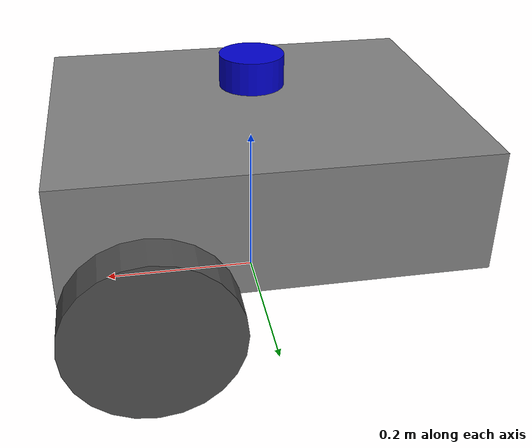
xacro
<?xml version="1.0"?>
<robot xmlns:xacro="http://www.ros.org/wiki/xacro" name="umma_robot">

  <xacro:arg name="wheel_radius"   default="0.1"/>
  <xacro:arg name="wheel_base"     default="0.5"/>
  <xacro:arg name="wheel_offset_x" default="0.15"/>
  <xacro:arg name="lidar_x"        default="0.0"/>
  <xacro:arg name="lidar_y"        default="0.0"/>
  <xacro:arg name="lidar_z"        default="0.17"/>
  <xacro:arg name="lidar_roll"     default="0.0"/>
  <xacro:arg name="lidar_pitch"    default="0.0"/>
  <xacro:arg name="lidar_yaw"      default="0.0"/>

  <!-- ==================== Internal Properties ==================== -->
  <xacro:property name="wheel_radius"   value="$(arg wheel_radius)"/>
  <xacro:property name="wheel_base"     value="$(arg wheel_base)"/>
  <xacro:property name="wheel_offset_x" value="$(arg wheel_offset_x)"/>
  <xacro:property name="lidar_x"        value="$(arg lidar_x)"/>
  <xacro:property name="lidar_y"        value="$(arg lidar_y)"/>
  <xacro:property name="lidar_z"        value="$(arg lidar_z)"/>
  <xacro:property name="lidar_roll"     value="$(arg lidar_roll)"/>
  <xacro:property name="lidar_pitch"    value="$(arg lidar_pitch)"/>
  <xacro:property name="lidar_yaw"      value="$(arg lidar_yaw)"/>

  <xacro:property name="wheel_width"  value="0.05"/>
  <xacro:property name="base_length"  value="0.5"/>
  <xacro:property name="base_width"   value="0.4"/>
  <xacro:property name="base_height"  value="0.15"/>

  <!-- ==================== Materials ==================== -->
  <material name="grey">
    <color rgba="0.5 0.5 0.5 1.0"/>
  </material>
  <material name="dark_grey">
    <color rgba="0.3 0.3 0.3 1.0"/>
  </material>
  <material name="blue">
    <color rgba="0.0 0.0 0.8 1.0"/>
  </material>

  <!-- ==================== Base Link ==================== -->
  <!-- base_footprint: 로봇 기하학적 중심(지면 투영) — 라이다 바로 아래 -->
  <link name="base_footprint"/>

  <joint name="base_joint" type="fixed">
    <parent link="base_footprint"/>
    <child link="base_link"/>
    <origin xyz="0 0 ${wheel_radius}" rpy="0 0 0"/>
  </joint>

  <link name="base_link">
    <visual>
      <geometry>
        <box size="${base_length} ${base_width} ${base_height}"/>
      </geometry>
      <origin xyz="0 0 ${base_height/2}" rpy="0 0 0"/>
      <material name="grey"/>
    </visual>
    <collision>
      <geometry>
        <box size="${base_length} ${base_width} ${base_height}"/>
      </geometry>
      <origin xyz="0 0 ${base_height/2}" rpy="0 0 0"/>
    </collision>
    <inertial>
      <mass value="10.0"/>
      <origin xyz="0 0 ${base_height/2}" rpy="0 0 0"/>
      <inertia ixx="0.1" ixy="0" ixz="0" iyy="0.1" iyz="0" izz="0.1"/>
    </inertial>
  </link>

  <!-- ==================== Wheel Macro ==================== -->
  <!-- 바퀴축은 base_link 기준 x = wheel_offset_x 에 위치 (앞쏠림이면 양수) -->
  <xacro:macro name="wheel" params="prefix y_reflect">
    <joint name="${prefix}_wheel_joint" type="continuous">
      <parent link="base_link"/>
      <child link="${prefix}_wheel_link"/>
      <origin xyz="${wheel_offset_x} ${y_reflect * wheel_base / 2} 0" rpy="${-pi/2} 0 0"/>
      <axis xyz="0 0 1"/>
    </joint>

    <link name="${prefix}_wheel_link">
      <visual>
        <geometry>
          <cylinder radius="${wheel_radius}" length="${wheel_width}"/>
        </geometry>
        <material name="dark_grey"/>
      </visual>
      <collision>
        <geometry>
          <cylinder radius="${wheel_radius}" length="${wheel_width}"/>
        </geometry>
      </collision>
      <inertial>
        <mass value="1.0"/>
        <inertia ixx="0.003" ixy="0" ixz="0" iyy="0.003" iyz="0" izz="0.005"/>
      </inertial>
    </link>
  </xacro:macro>

  <xacro:wheel prefix="left"  y_reflect="1"/>
  <xacro:wheel prefix="right" y_reflect="-1"/>

  <!-- ==================== Caster Wheel ==================== -->
  <!-- 구동바퀴 반대편에 자동으로 배치: 바퀴가 앞쏠림이면 캐스터는 뒤쪽으로 -->
  <joint name="caster_joint" type="fixed">
    <parent link="base_link"/>
    <child link="caster_link"/>
    <origin xyz="${-base_length/2 + 0.05 + wheel_offset_x} 0 ${-wheel_radius + 0.025}" rpy="0 0 0"/>
  </joint>

  <link name="caster_link">
    <visual>
      <geometry>
        <sphere radius="0.025"/>
      </geometry>
      <material name="dark_grey"/>
    </visual>
    <collision>
      <geometry>
        <sphere radius="0.025"/>
      </geometry>
    </collision>
    <inertial>
      <mass value="0.5"/>
      <inertia ixx="0.0001" ixy="0" ixz="0" iyy="0.0001" iyz="0" izz="0.0001"/>
    </inertial>
  </link>

  <!-- ==================== LiDAR ==================== -->
  <!-- 기본값 lidar_x = lidar_y = 0 → 로봇 기하학적 중심 위에 장착 -->
  <!-- rpy 는 base_link 축 기준. 라이다 장착 방향(특히 yaw 180°) 보정에 사용 -->
  <joint name="lidar_joint" type="fixed">
    <parent link="base_link"/>
    <child link="laser_frame"/>
    <origin xyz="${lidar_x} ${lidar_y} ${lidar_z}" rpy="${lidar_roll} ${lidar_pitch} ${lidar_yaw}"/>
  </joint>

  <link name="laser_frame">
    <visual>
      <geometry>
        <cylinder radius="0.04" length="0.04"/>
      </geometry>
      <origin xyz="0 0 0.02" rpy="0 0 0"/>
      <material name="blue"/>
    </visual>
    <collision>
      <geometry>
        <cylinder radius="0.04" length="0.04"/>
      </geometry>
      <origin xyz="0 0 0.02" rpy="0 0 0"/>
    </collision>
    <inertial>
      <mass value="0.2"/>
      <inertia ixx="0.0001" ixy="0" ixz="0" iyy="0.0001" iyz="0" izz="0.0001"/>
    </inertial>
  </link>

</robot>
